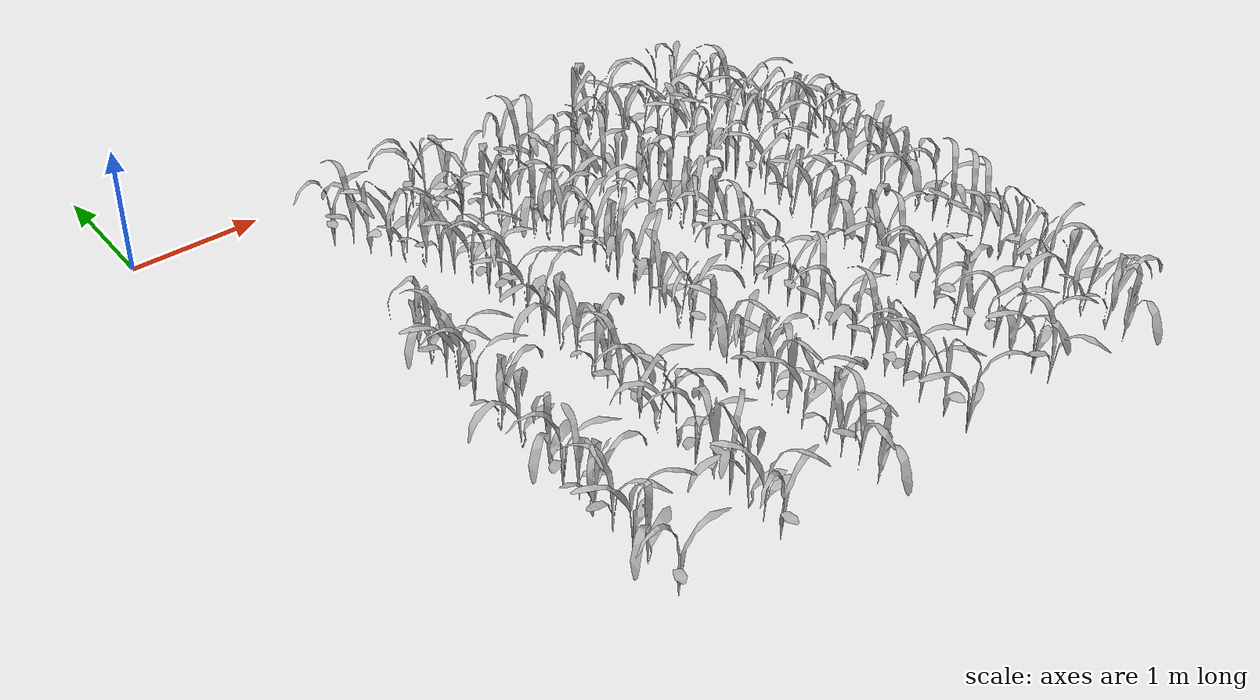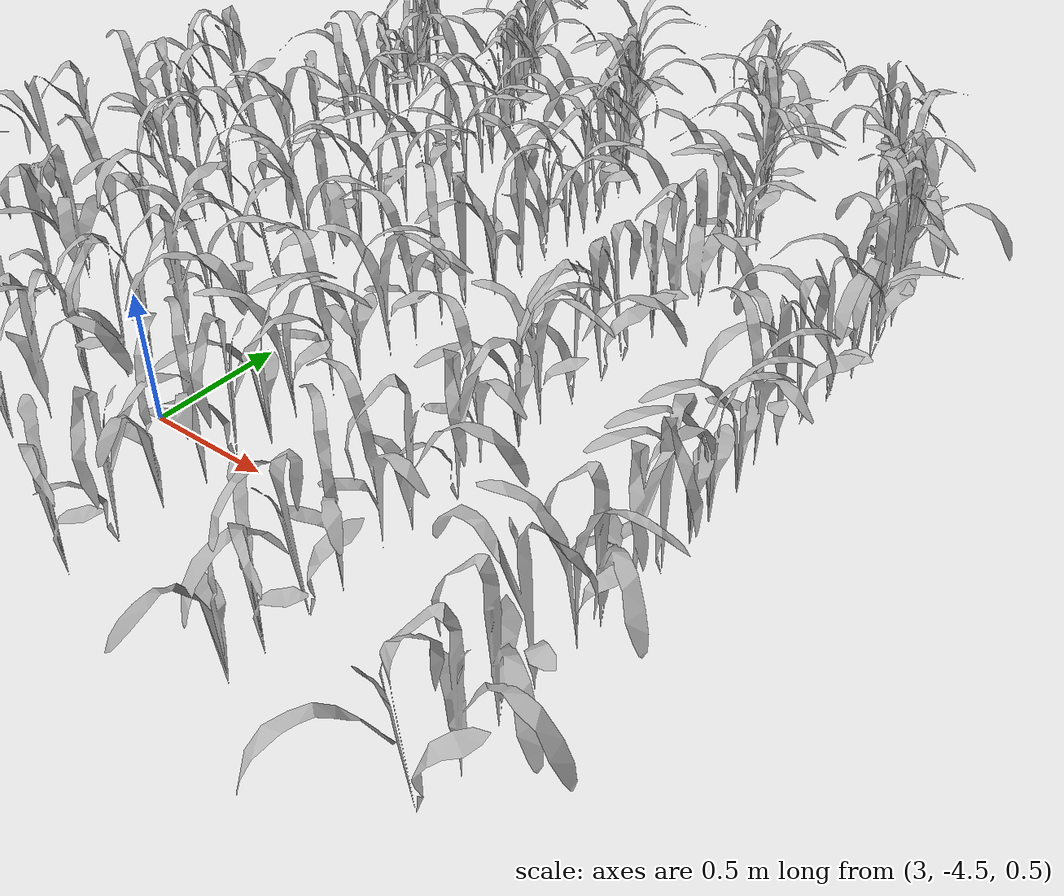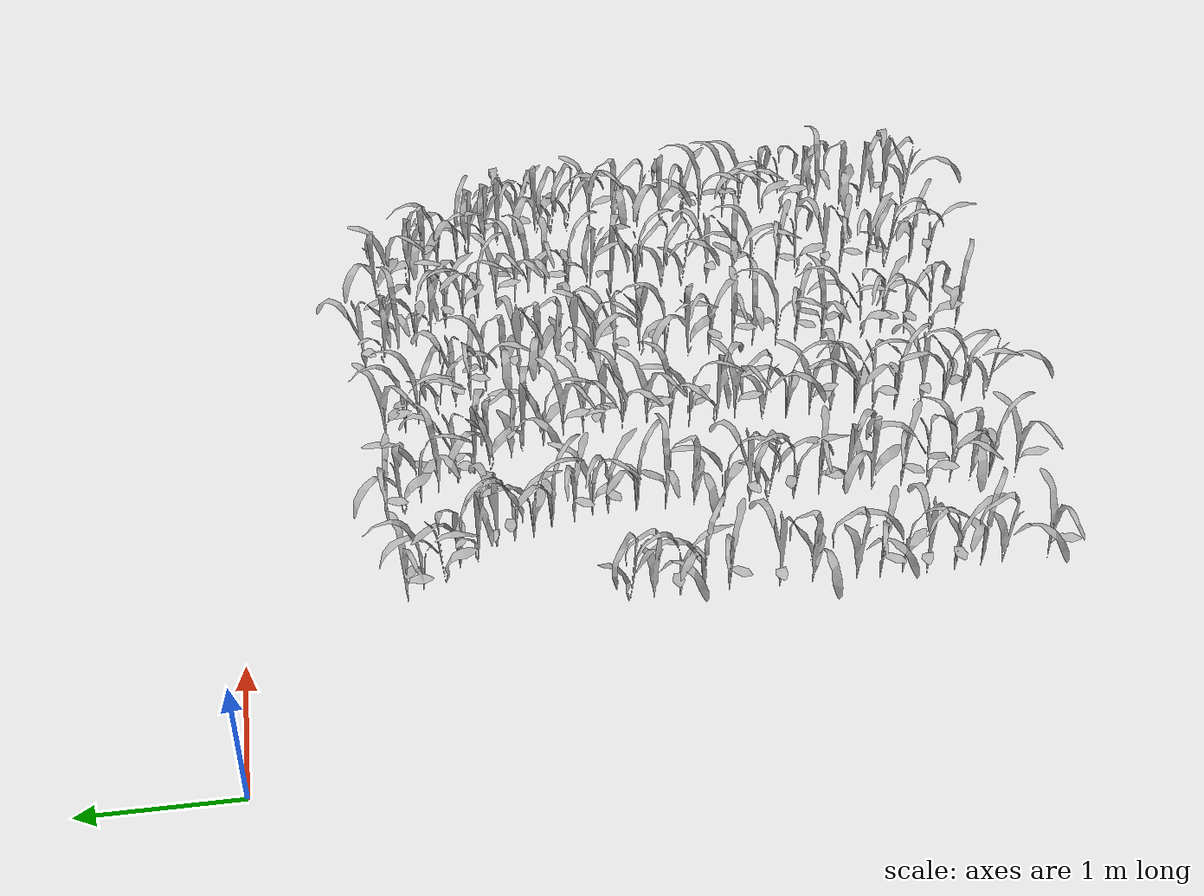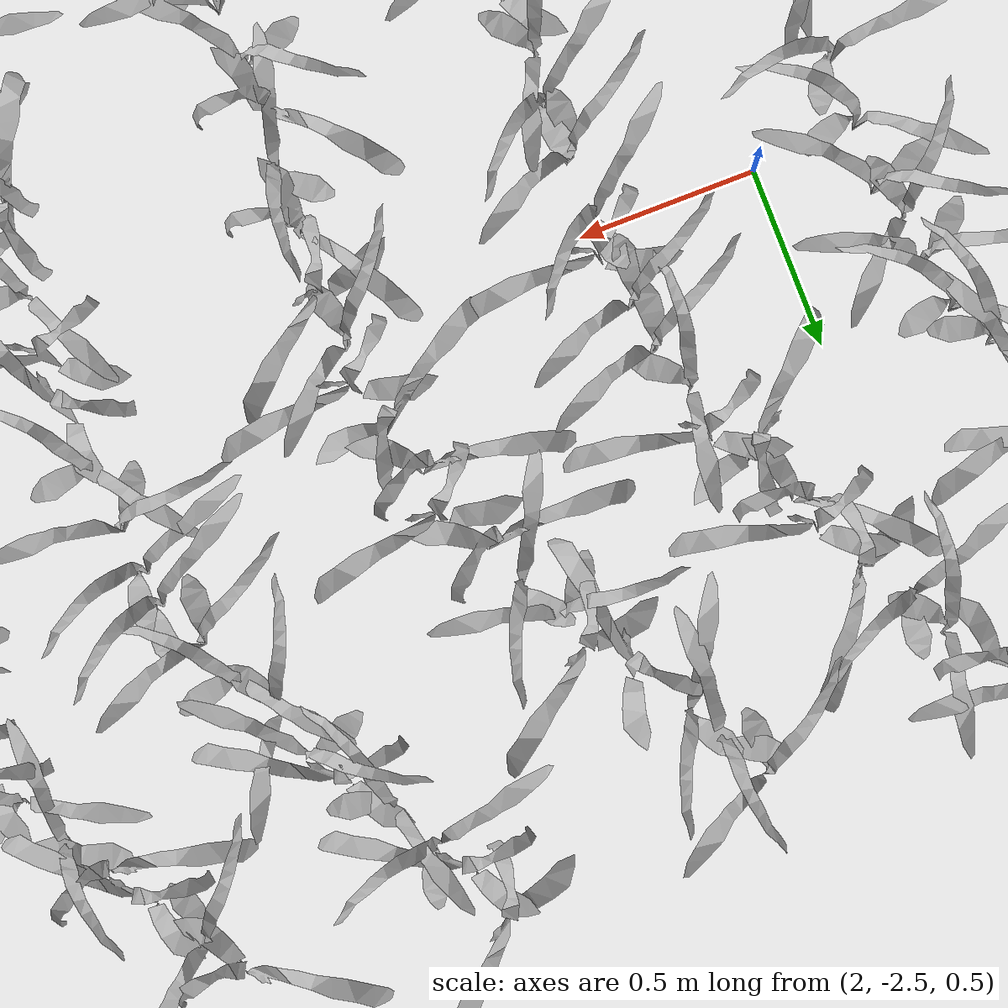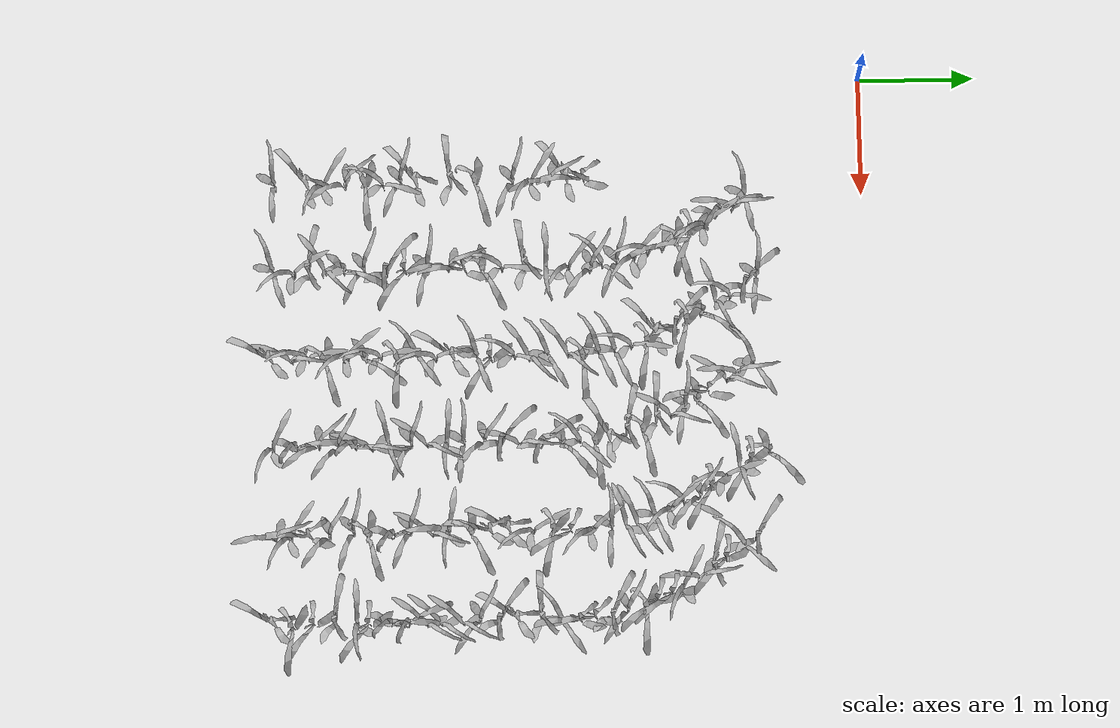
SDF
<sdf version="1.6">
 <world name="default">
  <include>
   <uri>model://maize_02</uri>
   <pose>0.9354248401941454 -5.016798976374626 0.3005871818746773 0.0 0.0 2.1951686818664897</pose>
   <name>maize_02_0361</name>
   <static>true</static>
  </include>
  <include>
   <uri>model://maize_01</uri>
   <pose>0.9455431159212668 -4.728071734312726 0.3005871818746773 0.0 0.0 4.6362822738280505</pose>
   <name>maize_01_0363</name>
   <static>true</static>
  </include>
  <include>
   <uri>model://maize_02</uri>
   <pose>0.9484597455749435 -4.59282685614854 0.3005871818746773 0.0 0.0 4.724897838876233</pose>
   <name>maize_02_0364</name>
   <static>true</static>
  </include>
  <include>
   <uri>model://maize_02</uri>
   <pose>0.9351515235392458 -4.422030426672068 0.3005871818746773 0.0 0.0 1.1215627061121014</pose>
   <name>maize_02_0365</name>
   <static>true</static>
  </include>
  <include>
   <uri>model://maize_01</uri>
   <pose>0.9306486506993161 -4.24545472324428 0.3011366844996115 0.0 0.0 0.8740095592740779</pose>
   <name>maize_01_0366</name>
   <static>true</static>
  </include>
  <include>
   <uri>model://maize_02</uri>
   <pose>0.9457072573051268 -4.08897244672967 0.3011366844996115 0.0 0.0 3.4024402962256937</pose>
   <name>maize_02_0367</name>
   <static>true</static>
  </include>
  <include>
   <uri>model://maize_02</uri>
   <pose>0.9335009399735676 -3.9464406684775493 0.3011366844996115 0.0 0.0 1.8070346404701803</pose>
   <name>maize_02_0368</name>
   <static>true</static>
  </include>
  <include>
   <uri>model://maize_01</uri>
   <pose>0.9439292995784425 -3.7986832538556428 0.3011366844996115 0.0 0.0 4.637491740630237</pose>
   <name>maize_01_0369</name>
   <static>true</static>
  </include>
  <include>
   <uri>model://maize_01</uri>
   <pose>0.9432351004991204 -3.5152307610125084 0.3009972376399595 0.0 0.0 4.046293084317519</pose>
   <name>maize_01_0371</name>
   <static>true</static>
  </include>
  <include>
   <uri>model://maize_01</uri>
   <pose>0.9331705338467964 -3.3132584242356544 0.3009972376399595 0.0 0.0 1.0763220613154036</pose>
   <name>maize_01_0372</name>
   <static>true</static>
  </include>
  <include>
   <uri>model://maize_02</uri>
   <pose>0.950334085406136 -2.9968606073519237 0.300992767274991 0.0 0.0 1.8145975927688975</pose>
   <name>maize_02_0374</name>
   <static>true</static>
  </include>
  <include>
   <uri>model://maize_02</uri>
   <pose>0.9460970935873554 -2.829177996344716 0.300992767274991 0.0 0.0 4.719461178273406</pose>
   <name>maize_02_0375</name>
   <static>true</static>
  </include>
  <include>
   <uri>model://maize_02</uri>
   <pose>0.9433885809357789 -2.6906424551838177 0.300992767274991 0.0 0.0 0.9672801027482856</pose>
   <name>maize_02_0376</name>
   <static>true</static>
  </include>
  <include>
   <uri>model://maize_01</uri>
   <pose>0.9357815083059184 -2.520717139198507 0.300992767274991 0.0 0.0 4.610146799322317</pose>
   <name>maize_01_0377</name>
   <static>true</static>
  </include>
  <include>
   <uri>model://maize_01</uri>
   <pose>0.9351476404386367 -2.374096976831198 0.300992767274991 0.0 0.0 5.585590617857179</pose>
   <name>maize_01_0378</name>
   <static>true</static>
  </include>
  <include>
   <uri>model://maize_02</uri>
   <pose>1.6829265943318112 -5.03125240654541 0.30098254847140454 0.0 0.0 2.489303104869323</pose>
   <name>maize_02_0434</name>
   <static>true</static>
  </include>
  <include>
   <uri>model://maize_02</uri>
   <pose>1.7022897777566903 -4.861638329921839 0.30098254847140454 0.0 0.0 4.236404586716972</pose>
   <name>maize_02_0435</name>
   <static>true</static>
  </include>
  <include>
   <uri>model://maize_01</uri>
   <pose>1.6994174931073907 -4.732981390118336 0.30098254847140454 0.0 0.0 3.731625377225384</pose>
   <name>maize_01_0436</name>
   <static>true</static>
  </include>
  <include>
   <uri>model://maize_02</uri>
   <pose>1.676914363129815 -4.589888040906742 0.30098254847140454 0.0 0.0 5.978631711847398</pose>
   <name>maize_02_0437</name>
   <static>true</static>
  </include>
  <include>
   <uri>model://maize_01</uri>
   <pose>1.685786121683235 -4.440102989428622 0.30098254847140454 0.0 0.0 1.9728975206452426</pose>
   <name>maize_01_0438</name>
   <static>true</static>
  </include>
  <include>
   <uri>model://maize_02</uri>
   <pose>1.6861390630899968 -4.269055097351342 0.30098254847140454 0.0 0.0 1.7227676678765658</pose>
   <name>maize_02_0439</name>
   <static>true</static>
  </include>
  <include>
   <uri>model://maize_01</uri>
   <pose>1.7043718416114728 -4.076788366456831 0.30098254847140454 0.0 0.0 3.2096702523821574</pose>
   <name>maize_01_0440</name>
   <static>true</static>
  </include>
  <include>
   <uri>model://maize_01</uri>
   <pose>1.6898772720459412 -3.9031434299362715 0.30098254847140454 0.0 0.0 0.1845073829625913</pose>
   <name>maize_01_0441</name>
   <static>true</static>
  </include>
  <include>
   <uri>model://maize_02</uri>
   <pose>1.6906120278872165 -3.725027150818464 0.30098254847140454 0.0 0.0 1.9680999612297803</pose>
   <name>maize_02_0442</name>
   <static>true</static>
  </include>
  <include>
   <uri>model://maize_02</uri>
   <pose>1.6703391507598588 -3.5532260312035255 0.30098254847140454 0.0 0.0 0.8209560335910314</pose>
   <name>maize_02_0443</name>
   <static>true</static>
  </include>
  <include>
   <uri>model://maize_01</uri>
   <pose>1.6939829853069852 -3.3918035129540867 0.3013609543107844 0.0 0.0 5.572284578474138</pose>
   <name>maize_01_0444</name>
   <static>true</static>
  </include>
  <include>
   <uri>model://maize_01</uri>
   <pose>1.6889764572196 -3.269352331171985 0.3013609543107844 0.0 0.0 1.27972181001542</pose>
   <name>maize_01_0445</name>
   <static>true</static>
  </include>
  <include>
   <uri>model://maize_02</uri>
   <pose>1.6804784394010273 -3.09679109031098 0.3013609543107844 0.0 0.0 3.5388670511246496</pose>
   <name>maize_02_0446</name>
   <static>true</static>
  </include>
  <include>
   <uri>model://maize_01</uri>
   <pose>1.6896805282769474 -2.8999115913447238 0.3013609543107844 0.0 0.0 4.082478400500709</pose>
   <name>maize_01_0447</name>
   <static>true</static>
  </include>
  <include>
   <uri>model://maize_02</uri>
   <pose>1.6905005685112104 -2.719156656559658 0.3013609543107844 0.0 0.0 5.366469149705963</pose>
   <name>maize_02_0448</name>
   <static>true</static>
  </include>
  <include>
   <uri>model://maize_02</uri>
   <pose>1.6920528661238652 -2.53032112312146 0.3013609543107844 0.0 0.0 4.604450677962354</pose>
   <name>maize_02_0449</name>
   <static>true</static>
  </include>
  <include>
   <uri>model://maize_02</uri>
   <pose>1.708382619931604 -2.3502096378442627 0.3013609543107844 0.0 0.0 1.5272734273781843</pose>
   <name>maize_02_0450</name>
   <static>true</static>
  </include>
  <include>
   <uri>model://maize_02</uri>
   <pose>1.6770043671922579 -2.2435413070682313 0.3013609543107844 0.0 0.0 2.9698882960393282</pose>
   <name>maize_02_0451</name>
   <static>true</static>
  </include>
  <include>
   <uri>model://maize_02</uri>
   <pose>1.6621523738868784 -2.1271483440339884 0.3013609543107844 0.0 0.0 1.8421852361848063</pose>
   <name>maize_02_0452</name>
   <static>true</static>
  </include>
  <include>
   <uri>model://maize_02</uri>
   <pose>1.6278224535709505 -1.9749039458437092 0.3013609543107844 0.0 0.0 4.547045113121808</pose>
   <name>maize_02_0453</name>
   <static>true</static>
  </include>
  <include>
   <uri>model://maize_02</uri>
   <pose>1.567416222849009 -1.85367170811512 0.3013609543107844 0.0 0.0 3.937009828903911</pose>
   <name>maize_02_0454</name>
   <static>true</static>
  </include>
  <include>
   <uri>model://maize_02</uri>
   <pose>1.5354725472581012 -1.7311017538210327 0.3013609543107844 0.0 0.0 1.0112866723575158</pose>
   <name>maize_02_0455</name>
   <static>true</static>
  </include>
  <include>
   <uri>model://maize_01</uri>
   <pose>1.4854345291625755 -1.6179570322032284 0.3013609543107844 0.0 0.0 1.0827398443285796</pose>
   <name>maize_01_0456</name>
   <static>true</static>
  </include>
  <include>
   <uri>model://maize_01</uri>
   <pose>1.405422177649007 -1.4878680580260315 0.3013609543107844 0.0 0.0 0.45792901688936893</pose>
   <name>maize_01_0457</name>
   <static>true</static>
  </include>
  <include>
   <uri>model://maize_02</uri>
   <pose>1.3580045733174575 -1.3677678958450665 0.3013609543107844 0.0 0.0 4.348789099082545</pose>
   <name>maize_02_0458</name>
   <static>true</static>
  </include>
  <include>
   <uri>model://maize_01</uri>
   <pose>1.2565035216330844 -1.2678503256147773 0.3013609543107844 0.0 0.0 2.6540740806081193</pose>
   <name>maize_01_0459</name>
   <static>true</static>
  </include>
  <include>
   <uri>model://maize_02</uri>
   <pose>1.2000310289333107 -1.1305199707037727 0.3013609543107844 0.0 0.0 0.5570423924214156</pose>
   <name>maize_02_0460</name>
   <static>true</static>
  </include>
  <include>
   <uri>model://maize_02</uri>
   <pose>1.1074088965693647 -1.0273055462592244 0.3013609543107844 0.0 0.0 2.376229843232303</pose>
   <name>maize_02_0461</name>
   <static>true</static>
  </include>
  <include>
   <uri>model://maize_01</uri>
   <pose>2.440250064121778 -5.046784769873862 0.30186649963883133 0.0 0.0 5.064160402584011</pose>
   <name>maize_01_0506</name>
   <static>true</static>
  </include>
  <include>
   <uri>model://maize_02</uri>
   <pose>2.439850424244942 -4.8859367124864415 0.30186649963883133 0.0 0.0 0.3274027566636601</pose>
   <name>maize_02_0507</name>
   <static>true</static>
  </include>
  <include>
   <uri>model://maize_02</uri>
   <pose>2.4272195834922448 -4.748021047472525 0.30186649963883133 0.0 0.0 3.8407984948230554</pose>
   <name>maize_02_0508</name>
   <static>true</static>
  </include>
  <include>
   <uri>model://maize_01</uri>
   <pose>2.4521442410267573 -4.606109892400583 0.30186649963883133 0.0 0.0 1.0786384059236742</pose>
   <name>maize_01_0509</name>
   <static>true</static>
  </include>
  <include>
   <uri>model://maize_02</uri>
   <pose>2.4214196359186237 -4.410585102026056 0.30118973022608164 0.0 0.0 4.383894023109291</pose>
   <name>maize_02_0510</name>
   <static>true</static>
  </include>
  <include>
   <uri>model://maize_01</uri>
   <pose>2.446364748853145 -4.263670318811121 0.30118973022608164 0.0 0.0 1.7634049636160862</pose>
   <name>maize_01_0511</name>
   <static>true</static>
  </include>
  <include>
   <uri>model://maize_02</uri>
   <pose>2.4243642945476784 -4.134461643498267 0.30118973022608164 0.0 0.0 3.8144092336114737</pose>
   <name>maize_02_0512</name>
   <static>true</static>
  </include>
  <include>
   <uri>model://maize_01</uri>
   <pose>2.457329055826114 -3.982255205270747 0.30118973022608164 0.0 0.0 0.7412240825456649</pose>
   <name>maize_01_0513</name>
   <static>true</static>
  </include>
  <include>
   <uri>model://maize_02</uri>
   <pose>2.427865568994247 -3.822997467118619 0.30118973022608164 0.0 0.0 2.789268590010311</pose>
   <name>maize_02_0514</name>
   <static>true</static>
  </include>
  <include>
   <uri>model://maize_02</uri>
   <pose>2.4469793613800865 -3.6703204169637345 0.30118973022608164 0.0 0.0 3.9142082201804342</pose>
   <name>maize_02_0515</name>
   <static>true</static>
  </include>
  <include>
   <uri>model://maize_01</uri>
   <pose>2.4454221428079963 -3.506311297611376 0.30118973022608164 0.0 0.0 4.9758271072061975</pose>
   <name>maize_01_0516</name>
   <static>true</static>
  </include>
  <include>
   <uri>model://maize_02</uri>
   <pose>2.4506968597311998 -3.3168441781625497 0.30118973022608164 0.0 0.0 2.5390043586653834</pose>
   <name>maize_02_0517</name>
   <static>true</static>
  </include>
  <include>
   <uri>model://maize_01</uri>
   <pose>2.4538084272181058 -3.1919041191012947 0.30118973022608164 0.0 0.0 0.2252421789352669</pose>
   <name>maize_01_0518</name>
   <static>true</static>
  </include>
  <include>
   <uri>model://maize_02</uri>
   <pose>2.4408014858156184 -3.0024754411297967 0.30118973022608164 0.0 0.0 3.390163502924446</pose>
   <name>maize_02_0519</name>
   <static>true</static>
  </include>
  <include>
   <uri>model://maize_02</uri>
   <pose>2.456038134251613 -2.8767294936611316 0.30118973022608164 0.0 0.0 5.972174679367882</pose>
   <name>maize_02_0520</name>
   <static>true</static>
  </include>
  <include>
   <uri>model://maize_02</uri>
   <pose>2.451792333411457 -2.719637220400498 0.30118973022608164 0.0 0.0 2.681830749303836</pose>
   <name>maize_02_0521</name>
   <static>true</static>
  </include>
  <include>
   <uri>model://maize_02</uri>
   <pose>2.435316597930629 -2.5472950637880043 0.30118973022608164 0.0 0.0 6.040121743330357</pose>
   <name>maize_02_0522</name>
   <static>true</static>
  </include>
  <include>
   <uri>model://maize_01</uri>
   <pose>2.4574260156788563 -2.4268720864565507 0.30118973022608164 0.0 0.0 0.8628169422596427</pose>
   <name>maize_01_0523</name>
   <static>true</static>
  </include>
  <include>
   <uri>model://maize_02</uri>
   <pose>2.439368074894678 -2.288855925511765 0.30118973022608164 0.0 0.0 2.6063648409773483</pose>
   <name>maize_02_0524</name>
   <static>true</static>
  </include>
  <include>
   <uri>model://maize_02</uri>
   <pose>2.4282382618360385 -2.1544022852828735 0.30118973022608164 0.0 0.0 2.5905513662055046</pose>
   <name>maize_02_0525</name>
   <static>true</static>
  </include>
  <include>
   <uri>model://maize_02</uri>
   <pose>2.3737112254292176 -2.0132296767429314 0.30118973022608164 0.0 0.0 3.594324947624786</pose>
   <name>maize_02_0526</name>
   <static>true</static>
  </include>
  <include>
   <uri>model://maize_01</uri>
   <pose>2.353719142266123 -1.8754350592333189 0.30118973022608164 0.0 0.0 0.6476952202445514</pose>
   <name>maize_01_0527</name>
   <static>true</static>
  </include>
  <include>
   <uri>model://maize_01</uri>
   <pose>2.282425175495624 -1.788229862029645 0.30118973022608164 0.0 0.0 4.710382271802735</pose>
   <name>maize_01_0528</name>
   <static>true</static>
  </include>
  <include>
   <uri>model://maize_01</uri>
   <pose>2.211873783908252 -1.641923949831669 0.30118973022608164 0.0 0.0 3.182438235956637</pose>
   <name>maize_01_0529</name>
   <static>true</static>
  </include>
  <include>
   <uri>model://maize_01</uri>
   <pose>2.1759484952208217 -1.5392242639978047 0.30118973022608164 0.0 0.0 0.5824079645428628</pose>
   <name>maize_01_0530</name>
   <static>true</static>
  </include>
  <include>
   <uri>model://maize_01</uri>
   <pose>2.106817737464053 -1.4195413658546634 0.30118973022608164 0.0 0.0 1.7487850113757093</pose>
   <name>maize_01_0531</name>
   <static>true</static>
  </include>
  <include>
   <uri>model://maize_02</uri>
   <pose>2.011387126706869 -1.286386331167294 0.30118973022608164 0.0 0.0 5.6955063974419184</pose>
   <name>maize_02_0532</name>
   <static>true</static>
  </include>
  <include>
   <uri>model://maize_02</uri>
   <pose>1.9649507178236554 -1.1688490616910323 0.30118973022608164 0.0 0.0 3.5222103771757003</pose>
   <name>maize_02_0533</name>
   <static>true</static>
  </include>
  <include>
   <uri>model://maize_01</uri>
   <pose>1.870064891357173 -1.0479850275586509 0.30118973022608164 0.0 0.0 3.098786967054968</pose>
   <name>maize_01_0534</name>
   <static>true</static>
  </include>
  <include>
   <uri>model://maize_02</uri>
   <pose>1.8105315441605885 -0.9442240213990638 0.30118973022608164 0.0 0.0 2.0954570983670027</pose>
   <name>maize_02_0535</name>
   <static>true</static>
  </include>
  <include>
   <uri>model://maize_02</uri>
   <pose>3.197467859429474 -5.049154538002014 0.30053399973813116 0.0 0.0 4.838325369521528</pose>
   <name>maize_02_0579</name>
   <static>true</static>
  </include>
  <include>
   <uri>model://maize_01</uri>
   <pose>3.1991345112735603 -4.860061027541869 0.30053399973813116 0.0 0.0 2.4353996130464983</pose>
   <name>maize_01_0580</name>
   <static>true</static>
  </include>
  <include>
   <uri>model://maize_02</uri>
   <pose>3.179715350058987 -4.671248982241762 0.30053399973813116 0.0 0.0 1.235265254803917</pose>
   <name>maize_02_0581</name>
   <static>true</static>
  </include>
  <include>
   <uri>model://maize_02</uri>
   <pose>3.2046667101784623 -4.507384577240283 0.30053399973813116 0.0 0.0 1.5496736292592659</pose>
   <name>maize_02_0582</name>
   <static>true</static>
  </include>
  <include>
   <uri>model://maize_01</uri>
   <pose>3.1901414182112484 -4.360208788969227 0.30053399973813116 0.0 0.0 2.136672250721265</pose>
   <name>maize_01_0583</name>
   <static>true</static>
  </include>
  <include>
   <uri>model://maize_02</uri>
   <pose>3.203960690138154 -4.2167014353585355 0.30053399973813116 0.0 0.0 0.342524068209651</pose>
   <name>maize_02_0584</name>
   <static>true</static>
  </include>
  <include>
   <uri>model://maize_02</uri>
   <pose>3.172793892867266 -4.0687035207285325 0.30053399973813116 0.0 0.0 5.6070219725923485</pose>
   <name>maize_02_0585</name>
   <static>true</static>
  </include>
  <include>
   <uri>model://maize_02</uri>
   <pose>3.182216963343495 -3.8897987192251597 0.30053399973813116 0.0 0.0 1.769097631932973</pose>
   <name>maize_02_0586</name>
   <static>true</static>
  </include>
  <include>
   <uri>model://maize_02</uri>
   <pose>3.181311865332453 -3.749689759700214 0.30053399973813116 0.0 0.0 0.037352463170659975</pose>
   <name>maize_02_0587</name>
   <static>true</static>
  </include>
  <include>
   <uri>model://maize_02</uri>
   <pose>3.180871882031071 -3.5809681083832605 0.30053399973813116 0.0 0.0 5.266068830149392</pose>
   <name>maize_02_0588</name>
   <static>true</static>
  </include>
  <include>
   <uri>model://maize_02</uri>
   <pose>3.1890695834223477 -3.4437386400809795 0.30053399973813116 0.0 0.0 2.1066338732430454</pose>
   <name>maize_02_0589</name>
   <static>true</static>
  </include>
  <include>
   <uri>model://maize_02</uri>
   <pose>3.1705488957058234 -3.273448280222271 0.2999252172734692 0.0 0.0 1.4471434620321613</pose>
   <name>maize_02_0590</name>
   <static>true</static>
  </include>
  <include>
   <uri>model://maize_01</uri>
   <pose>3.1735568084776498 -3.123909704763752 0.2999252172734692 0.0 0.0 3.1148495202787414</pose>
   <name>maize_01_0591</name>
   <static>true</static>
  </include>
  <include>
   <uri>model://maize_02</uri>
   <pose>3.1933481775844266 -2.965588126425592 0.2999252172734692 0.0 0.0 0.37404603267207404</pose>
   <name>maize_02_0592</name>
   <static>true</static>
  </include>
  <include>
   <uri>model://maize_01</uri>
   <pose>3.2037189095121983 -2.7915414065354187 0.2999252172734692 0.0 0.0 2.90895923011011</pose>
   <name>maize_01_0593</name>
   <static>true</static>
  </include>
  <include>
   <uri>model://maize_01</uri>
   <pose>3.190871865280383 -2.615421876147877 0.2999252172734692 0.0 0.0 1.5069172786643064</pose>
   <name>maize_01_0594</name>
   <static>true</static>
  </include>
  <include>
   <uri>model://maize_02</uri>
   <pose>3.193330774312286 -2.459161140122957 0.2999252172734692 0.0 0.0 2.9731295933710693</pose>
   <name>maize_02_0595</name>
   <static>true</static>
  </include>
  <include>
   <uri>model://maize_01</uri>
   <pose>3.1930761889001884 -2.335546110340433 0.2999252172734692 0.0 0.0 0.9298701979188074</pose>
   <name>maize_01_0596</name>
   <static>true</static>
  </include>
  <include>
   <uri>model://maize_01</uri>
   <pose>3.1710116883764163 -2.204309446937873 0.2999252172734692 0.0 0.0 4.484787373279603</pose>
   <name>maize_01_0597</name>
   <static>true</static>
  </include>
  <include>
   <uri>model://maize_01</uri>
   <pose>3.1184946126756694 -2.069316854445918 0.2999252172734692 0.0 0.0 3.731184714615189</pose>
   <name>maize_01_0598</name>
   <static>true</static>
  </include>
  <include>
   <uri>model://maize_01</uri>
   <pose>3.100610578125715 -1.933935184425214 0.2999252172734692 0.0 0.0 1.0120035417758413</pose>
   <name>maize_01_0599</name>
   <static>true</static>
  </include>
  <include>
   <uri>model://maize_01</uri>
   <pose>3.0252646849560643 -1.8152068623453317 0.2999252172734692 0.0 0.0 3.922180291122166</pose>
   <name>maize_01_0600</name>
   <static>true</static>
  </include>
  <include>
   <uri>model://maize_02</uri>
   <pose>2.975031294999412 -1.6887792680706257 0.2999252172734692 0.0 0.0 0.15914377132493718</pose>
   <name>maize_02_0601</name>
   <static>true</static>
  </include>
  <include>
   <uri>model://maize_02</uri>
   <pose>2.9110892887835034 -1.5767624793751682 0.2999252172734692 0.0 0.0 2.0177196775749047</pose>
   <name>maize_02_0602</name>
   <static>true</static>
  </include>
  <include>
   <uri>model://maize_01</uri>
   <pose>2.858883471363785 -1.4729262563570187 0.2999252172734692 0.0 0.0 1.435269562855617</pose>
   <name>maize_01_0603</name>
   <static>true</static>
  </include>
  <include>
   <uri>model://maize_01</uri>
   <pose>2.7816750163262904 -1.3534791768553809 0.2999252172734692 0.0 0.0 5.690600973211286</pose>
   <name>maize_01_0604</name>
   <static>true</static>
  </include>
  <include>
   <uri>model://maize_02</uri>
   <pose>2.677598891787185 -1.2090463730068606 0.2999252172734692 0.0 0.0 0.11978342116838324</pose>
   <name>maize_02_0605</name>
   <static>true</static>
  </include>
  <include>
   <uri>model://maize_02</uri>
   <pose>2.627914613161841 -1.1164145809078418 0.2999252172734692 0.0 0.0 0.6197381903741164</pose>
   <name>maize_02_0606</name>
   <static>true</static>
  </include>
  <include>
   <uri>model://maize_02</uri>
   <pose>2.55662128208951 -0.9844216855638563 0.2999252172734692 0.0 0.0 2.725398584123155</pose>
   <name>maize_02_0607</name>
   <static>true</static>
  </include>
  <include>
   <uri>model://maize_02</uri>
   <pose>3.9498883956483737 -5.044051219542451 0.30074704596046997 0.0 0.0 0.7988678948810107</pose>
   <name>maize_02_0651</name>
   <static>true</static>
  </include>
  <include>
   <uri>model://maize_02</uri>
   <pose>3.952191646403685 -4.9071855458873825 0.30074704596046997 0.0 0.0 4.690542689825273</pose>
   <name>maize_02_0652</name>
   <static>true</static>
  </include>
  <include>
   <uri>model://maize_01</uri>
   <pose>3.9446301741677607 -4.725519422670295 0.30074704596046997 0.0 0.0 5.5267890344591</pose>
   <name>maize_01_0653</name>
   <static>true</static>
  </include>
  <include>
   <uri>model://maize_02</uri>
   <pose>3.9500458750205616 -4.588378957306971 0.30074704596046997 0.0 0.0 1.5254408338282848</pose>
   <name>maize_02_0654</name>
   <static>true</static>
  </include>
  <include>
   <uri>model://maize_02</uri>
   <pose>3.9227653514020497 -4.383413996899416 0.30074704596046997 0.0 0.0 1.8799107576823242</pose>
   <name>maize_02_0655</name>
   <static>true</static>
  </include>
  <include>
   <uri>model://maize_01</uri>
   <pose>3.9352065255453903 -4.260198224258747 0.30074704596046997 0.0 0.0 1.069519723504937</pose>
   <name>maize_01_0656</name>
   <static>true</static>
  </include>
  <include>
   <uri>model://maize_01</uri>
   <pose>3.9558006356787767 -4.056181400490071 0.30074704596046997 0.0 0.0 2.482152851101959</pose>
   <name>maize_01_0657</name>
   <static>true</static>
  </include>
  <include>
   <uri>model://maize_02</uri>
   <pose>3.9260784526546155 -3.9064970705064757 0.30074704596046997 0.0 0.0 1.7991689990957556</pose>
   <name>maize_02_0658</name>
   <static>true</static>
  </include>
  <include>
   <uri>model://maize_02</uri>
   <pose>3.9406476769353076 -3.717268765035294 0.30074704596046997 0.0 0.0 0.14853229321428038</pose>
   <name>maize_02_0659</name>
   <static>true</static>
  </include>
  <include>
   <uri>model://maize_02</uri>
   <pose>3.928412293123018 -3.5766535647290865 0.30074704596046997 0.0 0.0 5.159547837766633</pose>
   <name>maize_02_0660</name>
   <static>true</static>
  </include>
  <include>
   <uri>model://maize_01</uri>
   <pose>3.9359122170644048 -3.395990377641269 0.30074704596046997 0.0 0.0 1.250963916297849</pose>
   <name>maize_01_0661</name>
   <static>true</static>
  </include>
  <include>
   <uri>model://maize_01</uri>
   <pose>3.931724201200251 -3.2101727090149086 0.30074704596046997 0.0 0.0 5.343371352583995</pose>
   <name>maize_01_0662</name>
   <static>true</static>
  </include>
  <include>
   <uri>model://maize_01</uri>
   <pose>3.9212899824225547 -3.0590724252892105 0.30074704596046997 0.0 0.0 5.078172188564975</pose>
   <name>maize_01_0663</name>
   <static>true</static>
  </include>
  <include>
   <uri>model://maize_02</uri>
   <pose>3.938779193603526 -2.870490154237483 0.30074704596046997 0.0 0.0 4.20693060817639</pose>
   <name>maize_02_0664</name>
   <static>true</static>
  </include>
  <include>
   <uri>model://maize_01</uri>
   <pose>3.923393673411277 -2.692370863830988 0.30074704596046997 0.0 0.0 0.5927848753668754</pose>
   <name>maize_01_0665</name>
   <static>true</static>
  </include>
  <include>
   <uri>model://maize_01</uri>
   <pose>3.940403526773698 -2.534175990882926 0.30074704596046997 0.0 0.0 6.0019633461222135</pose>
   <name>maize_01_0666</name>
   <static>true</static>
  </include>
  <include>
   <uri>model://maize_02</uri>
   <pose>3.940802933909356 -2.370284686503256 0.30074704596046997 0.0 0.0 4.415316998470345</pose>
   <name>maize_02_0667</name>
   <static>true</static>
  </include>
  <include>
   <uri>model://maize_02</uri>
   <pose>3.931534297796884 -2.21561222951027 0.30074704596046997 0.0 0.0 2.1574201811285545</pose>
   <name>maize_02_0668</name>
   <static>true</static>
  </include>
  <include>
   <uri>model://maize_02</uri>
   <pose>3.9072149034730197 -2.0850973159075985 0.30074704596046997 0.0 0.0 5.673247179610771</pose>
   <name>maize_02_0669</name>
   <static>true</static>
  </include>
  <include>
   <uri>model://maize_02</uri>
   <pose>3.8994890809535674 -1.9883352881625032 0.30074704596046997 0.0 0.0 5.8268812594088715</pose>
   <name>maize_02_0670</name>
   <static>true</static>
  </include>
  <include>
   <uri>model://maize_02</uri>
   <pose>3.8377477725018894 -1.850269286463895 0.30074704596046997 0.0 0.0 2.6008739796666207</pose>
   <name>maize_02_0671</name>
   <static>true</static>
  </include>
  <include>
   <uri>model://maize_02</uri>
   <pose>3.772734394551194 -1.705550540554509 0.30074704596046997 0.0 0.0 4.468534539165121</pose>
   <name>maize_02_0672</name>
   <static>true</static>
  </include>
  <include>
   <uri>model://maize_02</uri>
   <pose>3.7110063477914403 -1.5996243678933626 0.30074704596046997 0.0 0.0 3.276344509005479</pose>
   <name>maize_02_0673</name>
   <static>true</static>
  </include>
  <include>
   <uri>model://maize_02</uri>
   <pose>3.6718126070169363 -1.4718638817244856 0.30074704596046997 0.0 0.0 1.4723580035081896</pose>
   <name>maize_02_0674</name>
   <static>true</static>
  </include>
  <include>
   <uri>model://maize_01</uri>
   <pose>3.594196199257161 -1.3600712898747596 0.30074704596046997 0.0 0.0 0.25953310548007685</pose>
   <name>maize_01_0675</name>
   <static>true</static>
  </include>
  <include>
   <uri>model://maize_02</uri>
   <pose>3.509896313838664 -1.250251496004551 0.30074704596046997 0.0 0.0 4.040692283916312</pose>
   <name>maize_02_0676</name>
   <static>true</static>
  </include>
  <include>
   <uri>model://maize_02</uri>
   <pose>3.4275169273373622 -1.1205389748627532 0.30074704596046997 0.0 0.0 5.546640175081568</pose>
   <name>maize_02_0677</name>
   <static>true</static>
  </include>
  <include>
   <uri>model://maize_01</uri>
   <pose>3.367039564696518 -1.0201563418466522 0.30074704596046997 0.0 0.0 0.2445685714974102</pose>
   <name>maize_01_0678</name>
   <static>true</static>
  </include>
  <include>
   <uri>model://maize_01</uri>
   <pose>3.303679385202506 -0.8872166735302345 0.30074704596046997 0.0 0.0 1.567247086123818</pose>
   <name>maize_01_0679</name>
   <static>true</static>
  </include>
  <include>
   <uri>model://maize_01</uri>
   <pose>4.680669289090004 -5.041936904247851 0.30007571624242935 0.0 0.0 5.009207758752923</pose>
   <name>maize_01_0723</name>
   <static>true</static>
  </include>
  <include>
   <uri>model://maize_01</uri>
   <pose>4.70118529135262 -4.889132766051241 0.30007571624242935 0.0 0.0 0.6707281616882097</pose>
   <name>maize_01_0724</name>
   <static>true</static>
  </include>
  <include>
   <uri>model://maize_01</uri>
   <pose>4.6763839165059435 -4.704626342614344 0.30007571624242935 0.0 0.0 0.16551370102713867</pose>
   <name>maize_01_0725</name>
   <static>true</static>
  </include>
  <include>
   <uri>model://maize_01</uri>
   <pose>4.6794121246764915 -4.544362250764473 0.30007571624242935 0.0 0.0 3.7551014952653765</pose>
   <name>maize_01_0726</name>
   <static>true</static>
  </include>
  <include>
   <uri>model://maize_02</uri>
   <pose>4.684767518619005 -4.356251172965314 0.30007571624242935 0.0 0.0 5.339053286049708</pose>
   <name>maize_02_0727</name>
   <static>true</static>
  </include>
  <include>
   <uri>model://maize_01</uri>
   <pose>4.685848954127233 -4.241869049392434 0.30007571624242935 0.0 0.0 0.11225575587728617</pose>
   <name>maize_01_0728</name>
   <static>true</static>
  </include>
  <include>
   <uri>model://maize_01</uri>
   <pose>4.696633947641579 -4.086079366373066 0.30007571624242935 0.0 0.0 2.328821205084665</pose>
   <name>maize_01_0729</name>
   <static>true</static>
  </include>
  <include>
   <uri>model://maize_01</uri>
   <pose>4.7049057264764 -3.938360400982044 0.30007571624242935 0.0 0.0 2.7580740900226877</pose>
   <name>maize_01_0730</name>
   <static>true</static>
  </include>
  <include>
   <uri>model://maize_02</uri>
   <pose>4.702541062490394 -3.7728226475439692 0.30007571624242935 0.0 0.0 6.270983885773478</pose>
   <name>maize_02_0731</name>
   <static>true</static>
  </include>
  <include>
   <uri>model://maize_02</uri>
   <pose>4.698179495726271 -3.651583873914004 0.30007571624242935 0.0 0.0 6.211512082060289</pose>
   <name>maize_02_0732</name>
   <static>true</static>
  </include>
  <include>
   <uri>model://maize_02</uri>
   <pose>4.69541264330578 -3.4704218621610874 0.30007571624242935 0.0 0.0 6.26230234348128</pose>
   <name>maize_02_0733</name>
   <static>true</static>
  </include>
  <include>
   <uri>model://maize_02</uri>
   <pose>4.683700491709119 -3.3386653571848557 0.30007571624242935 0.0 0.0 1.5984853698487338</pose>
   <name>maize_02_0734</name>
   <static>true</static>
  </include>
  <include>
   <uri>model://maize_01</uri>
   <pose>4.683960753231438 -3.1685521099090264 0.30007571624242935 0.0 0.0 3.2906058155774742</pose>
   <name>maize_01_0735</name>
   <static>true</static>
  </include>
  <include>
   <uri>model://maize_01</uri>
   <pose>4.675910297317746 -2.998774552625424 0.30007571624242935 0.0 0.0 4.96716936111248</pose>
   <name>maize_01_0736</name>
   <static>true</static>
  </include>
  <include>
   <uri>model://maize_01</uri>
   <pose>4.689313243953825 -2.8101871755269534 0.30007571624242935 0.0 0.0 3.9823245901622903</pose>
   <name>maize_01_0737</name>
   <static>true</static>
  </include>
  <include>
   <uri>model://maize_02</uri>
   <pose>4.704337448191569 -2.638992591383068 0.30007571624242935 0.0 0.0 2.7556553809264246</pose>
   <name>maize_02_0738</name>
   <static>true</static>
  </include>
  <include>
   <uri>model://maize_01</uri>
   <pose>4.697654113086728 -2.4701261988411494 0.30007571624242935 0.0 0.0 5.605080780579358</pose>
   <name>maize_01_0739</name>
   <static>true</static>
  </include>
  <include>
   <uri>model://maize_01</uri>
   <pose>4.671246571238014 -2.3443462425597557 0.30007571624242935 0.0 0.0 5.680362583435801</pose>
   <name>maize_01_0740</name>
   <static>true</static>
  </include>
  <include>
   <uri>model://maize_01</uri>
   <pose>4.67418754384508 -2.226422709576198 0.30007571624242935 0.0 0.0 3.4533657771218635</pose>
   <name>maize_01_0741</name>
   <static>true</static>
  </include>
  <include>
   <uri>model://maize_02</uri>
   <pose>4.624358413902583 -2.0986130406015366 0.30007571624242935 0.0 0.0 1.6003054080269588</pose>
   <name>maize_02_0742</name>
   <static>true</static>
  </include>
  <include>
   <uri>model://maize_01</uri>
   <pose>4.593183378931877 -1.9389957513453944 0.30007571624242935 0.0 0.0 0.7825897701077168</pose>
   <name>maize_01_0743</name>
   <static>true</static>
  </include>
  <include>
   <uri>model://maize_01</uri>
   <pose>4.538177919311598 -1.8283248375353345 0.30007571624242935 0.0 0.0 6.179574274159556</pose>
   <name>maize_01_0744</name>
   <static>true</static>
  </include>
  <include>
   <uri>model://maize_01</uri>
   <pose>4.4861801086127455 -1.7044400513698548 0.30007571624242935 0.0 0.0 6.145833951049363</pose>
   <name>maize_01_0745</name>
   <static>true</static>
  </include>
  <include>
   <uri>model://maize_02</uri>
   <pose>4.423206630968296 -1.614308725091553 0.30007571624242935 0.0 0.0 4.849493335791978</pose>
   <name>maize_02_0746</name>
   <static>true</static>
  </include>
  <include>
   <uri>model://maize_02</uri>
   <pose>4.353661717246033 -1.4683479524313625 0.30007571624242935 0.0 0.0 0.6652501158191927</pose>
   <name>maize_02_0747</name>
   <static>true</static>
  </include>
  <include>
   <uri>model://maize_01</uri>
   <pose>4.288884328686737 -1.371896525695709 0.30007571624242935 0.0 0.0 3.706264807469476</pose>
   <name>maize_01_0748</name>
   <static>true</static>
  </include>
  <include>
   <uri>model://maize_01</uri>
   <pose>4.198578254068365 -1.2488173050875175 0.30007571624242935 0.0 0.0 0.03385551878103818</pose>
   <name>maize_01_0749</name>
   <static>true</static>
  </include>
  <include>
   <uri>model://maize_02</uri>
   <pose>4.102855762851223 -1.0982931364403477 0.30007571624242935 0.0 0.0 2.984780085537276</pose>
   <name>maize_02_0750</name>
   <static>true</static>
  </include>
  <include>
   <uri>model://maize_01</uri>
   <pose>4.0444990950590265 -1.006116744972095 0.30007571624242935 0.0 0.0 3.36504160760004</pose>
   <name>maize_01_0751</name>
   <static>true</static>
  </include>
 </world>
</sdf>
